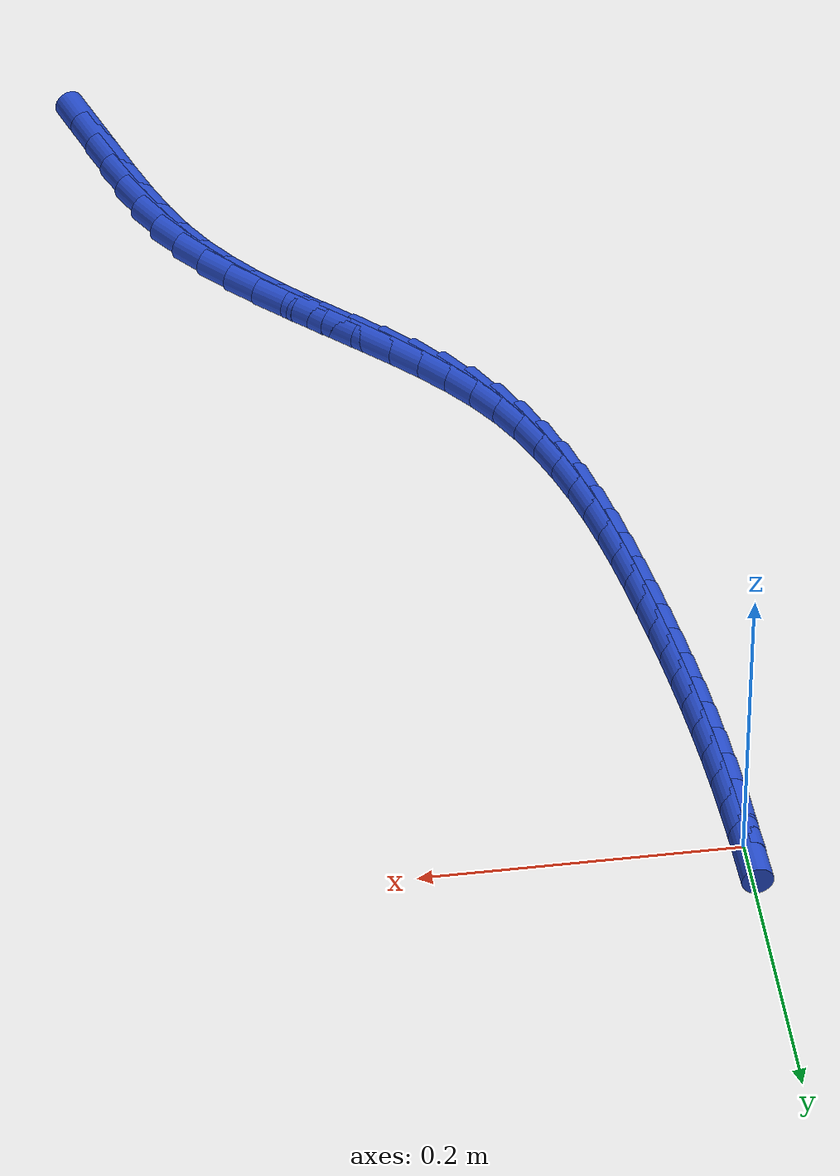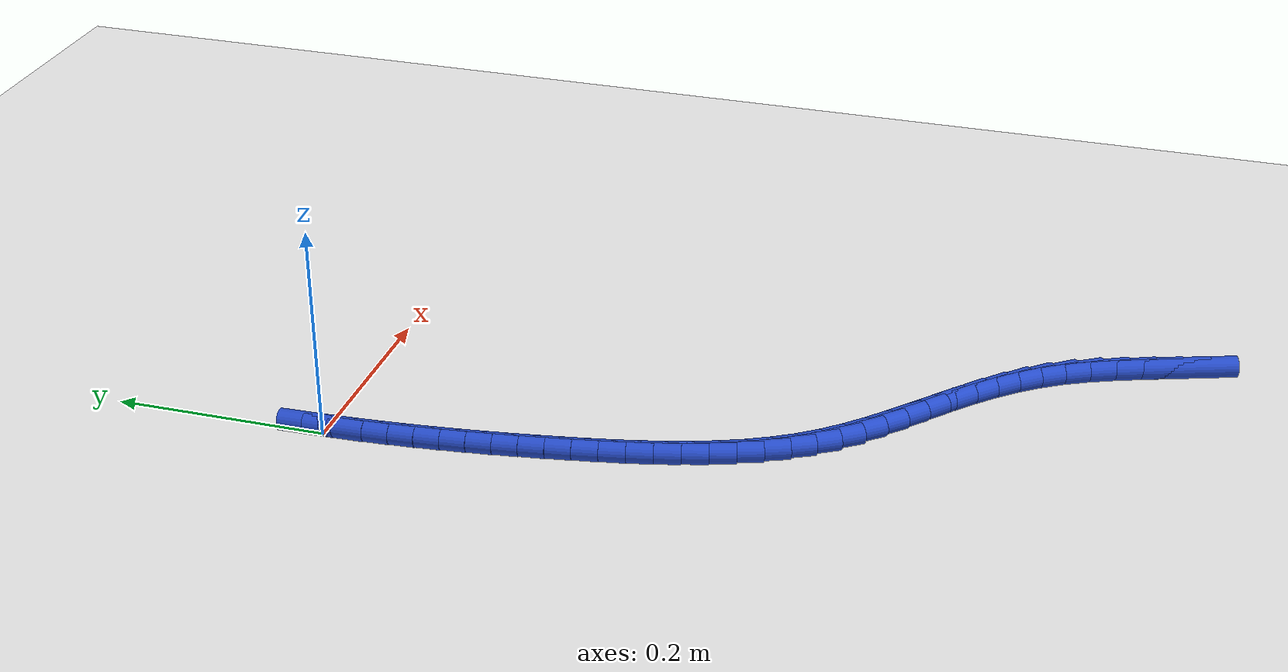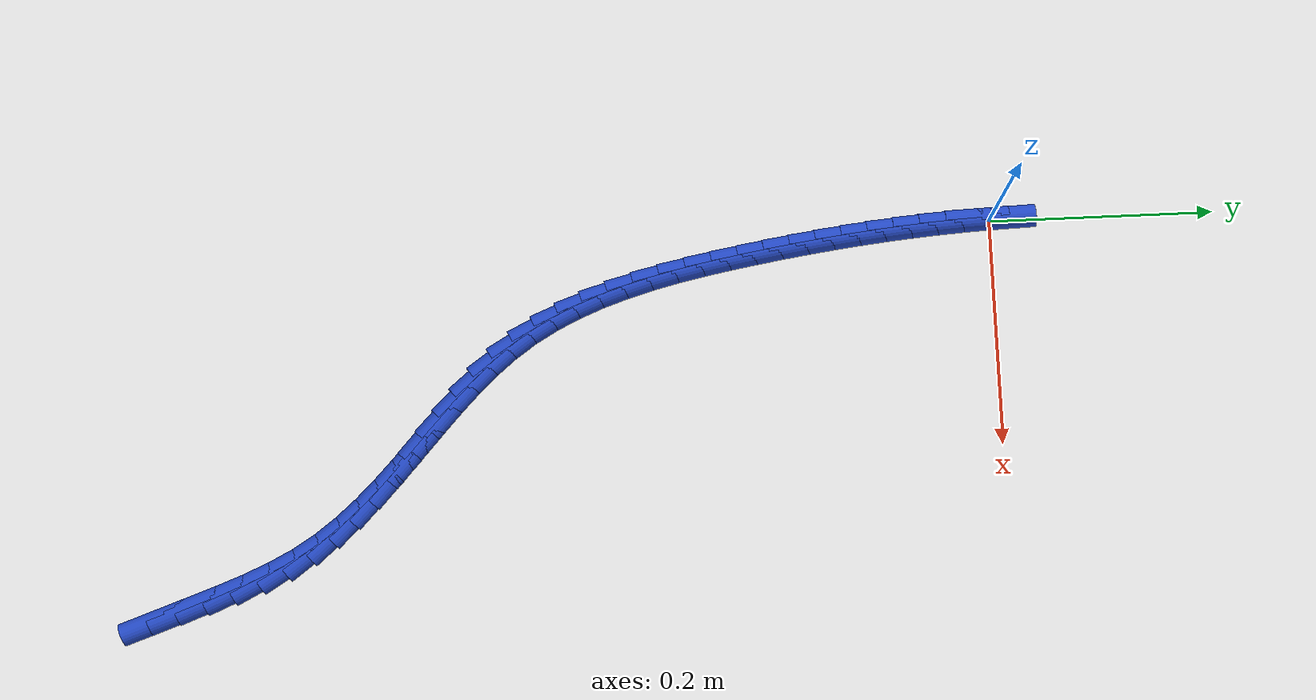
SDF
<sdf version="1.6">
 <world name="default">
  <model name="ground_plane">
   <static>1</static>
   <link name="link">
    <collision name="collision">
     <geometry><plane><normal>0 0 1</normal><size>100 100</size></plane></geometry>
     <surface><friction><ode><mu>100</mu><mu2>50</mu2></ode></friction></surface>
    </collision>
    <visual name="visual">
     <cast_shadows>0</cast_shadows>
     <geometry><plane><normal>0 0 1</normal><size>100 100</size></plane></geometry>
     <material>
      <script><uri>file://media/materials/scripts/gazebo.material</uri><name>Gazebo/WhiteGlow</name></script>
     </material>
    </visual>
   </link>
  </model>
  <model name="line">
   <link name="link_0">
    <pose>1.8214596497756474e-17 0.0 0.01 0 1.57 -1.538473802093192</pose>
    <collision name="collision">
     <geometry><cylinder><radius>0.01</radius><length>0.08</length></cylinder></geometry>
    </collision>
    <visual name="visual">
     <material>
      <script><name>Gazebo/Blue</name><uri>file://media/materials/scripts/gazebo.material</uri></script>
     </material>
     <geometry><cylinder><radius>0.01</radius><length>0.08</length></cylinder></geometry>
    </visual>
   </link>
   <link name="link_255">
    <pose>0.32106682018502103 -0.7330263671038842 0.01 0 1.57 -1.2356195115339834</pose>
    <collision name="collision">
     <geometry><cylinder><radius>0.01</radius><length>0.08</length></cylinder></geometry>
    </collision>
    <visual name="visual">
     <material>
      <script><name>Gazebo/Blue</name><uri>file://media/materials/scripts/gazebo.material</uri></script>
     </material>
     <geometry><cylinder><radius>0.01</radius><length>0.08</length></cylinder></geometry>
    </visual>
   </link>
   <link name="link_256">
    <pose>0.3128875784879244 -0.7095443491764931 0.01 0 1.57 -1.233583573580199</pose>
    <collision name="collision">
     <geometry><cylinder><radius>0.01</radius><length>0.08</length></cylinder></geometry>
    </collision>
    <visual name="visual">
     <material>
      <script><name>Gazebo/Blue</name><uri>file://media/materials/scripts/gazebo.material</uri></script>
     </material>
     <geometry><cylinder><radius>0.01</radius><length>0.08</length></cylinder></geometry>
    </visual>
   </link>
   <link name="link_257">
    <pose>0.30458377673203146 -0.6858600698453016 0.01 0 1.57 -1.2114731334229207</pose>
    <collision name="collision">
     <geometry><cylinder><radius>0.01</radius><length>0.08</length></cylinder></geometry>
    </collision>
    <visual name="visual">
     <material>
      <script><name>Gazebo/Blue</name><uri>file://media/materials/scripts/gazebo.material</uri></script>
     </material>
     <geometry><cylinder><radius>0.01</radius><length>0.08</length></cylinder></geometry>
    </visual>
   </link>
   <link name="link_258">
    <pose>0.2957657089542809 -0.6623846831440507 0.01 0 1.57 -1.1686099650813988</pose>
    <collision name="collision">
     <geometry><cylinder><radius>0.01</radius><length>0.08</length></cylinder></geometry>
    </collision>
    <visual name="visual">
     <material>
      <script><name>Gazebo/Blue</name><uri>file://media/materials/scripts/gazebo.material</uri></script>
     </material>
     <geometry><cylinder><radius>0.01</radius><length>0.08</length></cylinder></geometry>
    </visual>
   </link>
   <link name="link_259">
    <pose>0.2860436691916113 -0.6395293431064811 0.01 0 1.57 -1.1033565492524389</pose>
    <collision name="collision">
     <geometry><cylinder><radius>0.01</radius><length>0.08</length></cylinder></geometry>
    </collision>
    <visual name="visual">
     <material>
      <script><name>Gazebo/Blue</name><uri>file://media/materials/scripts/gazebo.material</uri></script>
     </material>
     <geometry><cylinder><radius>0.01</radius><length>0.08</length></cylinder></geometry>
    </visual>
   </link>
   <link name="link_260">
    <pose>0.27502795148096154 -0.617705203766334 0.01 0 1.57 -1.015612853715079</pose>
    <collision name="collision">
     <geometry><cylinder><radius>0.01</radius><length>0.08</length></cylinder></geometry>
    </collision>
    <visual name="visual">
     <material>
      <script><name>Gazebo/Blue</name><uri>file://media/materials/scripts/gazebo.material</uri></script>
     </material>
     <geometry><cylinder><radius>0.01</radius><length>0.08</length></cylinder></geometry>
    </visual>
   </link>
   <link name="link_261">
    <pose>0.2623648869923743 -0.597289465846833 0.01 0 1.57 -0.9273345155546358</pose>
    <collision name="collision">
     <geometry><cylinder><radius>0.01</radius><length>0.08</length></cylinder></geometry>
    </collision>
    <visual name="visual">
     <material>
      <script><name>Gazebo/Blue</name><uri>file://media/materials/scripts/gazebo.material</uri></script>
     </material>
     <geometry><cylinder><radius>0.01</radius><length>0.08</length></cylinder></geometry>
    </visual>
   </link>
   <link name="link_262">
    <pose>0.24810666225410855 -0.5782769430216367 0.01 0 1.57 -0.8544490313408714</pose>
    <collision name="collision">
     <geometry><cylinder><radius>0.01</radius><length>0.08</length></cylinder></geometry>
    </collision>
    <visual name="visual">
     <material>
      <script><name>Gazebo/Blue</name><uri>file://media/materials/scripts/gazebo.material</uri></script>
     </material>
     <geometry><cylinder><radius>0.01</radius><length>0.08</length></cylinder></geometry>
    </visual>
   </link>
   <link name="link_263">
    <pose>0.23256122765644002 -0.5604214744728715 0.01 0 1.57 -0.7981748123829998</pose>
    <collision name="collision">
     <geometry><cylinder><radius>0.01</radius><length>0.08</length></cylinder></geometry>
    </collision>
    <visual name="visual">
     <material>
      <script><name>Gazebo/Blue</name><uri>file://media/materials/scripts/gazebo.material</uri></script>
     </material>
     <geometry><cylinder><radius>0.01</radius><length>0.08</length></cylinder></geometry>
    </visual>
   </link>
   <link name="link_264">
    <pose>0.21604053137273274 -0.543473132768649 0.01 0 1.57 -0.7587319407372717</pose>
    <collision name="collision">
     <geometry><cylinder><radius>0.01</radius><length>0.08</length></cylinder></geometry>
    </collision>
    <visual name="visual">
     <material>
      <script><name>Gazebo/Blue</name><uri>file://media/materials/scripts/gazebo.material</uri></script>
     </material>
     <geometry><cylinder><radius>0.01</radius><length>0.08</length></cylinder></geometry>
    </visual>
   </link>
   <link name="link_265">
    <pose>0.19885652157635147 -0.5271819904770817 0.01 0 1.57 -0.7360205553714164</pose>
    <collision name="collision">
     <geometry><cylinder><radius>0.01</radius><length>0.08</length></cylinder></geometry>
    </collision>
    <visual name="visual">
     <material>
      <script><name>Gazebo/Blue</name><uri>file://media/materials/scripts/gazebo.material</uri></script>
     </material>
     <geometry><cylinder><radius>0.01</radius><length>0.08</length></cylinder></geometry>
    </visual>
   </link>
   <link name="link_266">
    <pose>0.1813211464406592 -0.5112981201662803 0.01 0 1.57 -0.729953744071418</pose>
    <collision name="collision">
     <geometry><cylinder><radius>0.01</radius><length>0.08</length></cylinder></geometry>
    </collision>
    <visual name="visual">
     <material>
      <script><name>Gazebo/Blue</name><uri>file://media/materials/scripts/gazebo.material</uri></script>
     </material>
     <geometry><cylinder><radius>0.01</radius><length>0.08</length></cylinder></geometry>
    </visual>
   </link>
   <link name="link_267">
    <pose>0.16374635413902056 -0.4955715944043571 0.01 0 1.57 -0.7406487309422715</pose>
    <collision name="collision">
     <geometry><cylinder><radius>0.01</radius><length>0.08</length></cylinder></geometry>
    </collision>
    <visual name="visual">
     <material>
      <script><name>Gazebo/Blue</name><uri>file://media/materials/scripts/gazebo.material</uri></script>
     </material>
     <geometry><cylinder><radius>0.01</radius><length>0.08</length></cylinder></geometry>
    </visual>
   </link>
   <link name="link_268">
    <pose>0.14644409284479973 -0.4797524857594239 0.01 0 1.57 -0.7684845305331675</pose>
    <collision name="collision">
     <geometry><cylinder><radius>0.01</radius><length>0.08</length></cylinder></geometry>
    </collision>
    <visual name="visual">
     <material>
      <script><name>Gazebo/Blue</name><uri>file://media/materials/scripts/gazebo.material</uri></script>
     </material>
     <geometry><cylinder><radius>0.01</radius><length>0.08</length></cylinder></geometry>
    </visual>
   </link>
   <link name="link_269">
    <pose>0.12972631073136082 -0.4635908667995927 0.01 0 1.57 -0.8140224280025766</pose>
    <collision name="collision">
     <geometry><cylinder><radius>0.01</radius><length>0.08</length></cylinder></geometry>
    </collision>
    <visual name="visual">
     <material>
      <script><name>Gazebo/Blue</name><uri>file://media/materials/scripts/gazebo.material</uri></script>
     </material>
     <geometry><cylinder><radius>0.01</radius><length>0.08</length></cylinder></geometry>
    </visual>
   </link>
   <link name="link_270">
    <pose>0.11390495597206801 -0.44683681009297516 0.01 0 1.57 -0.8777610729032944</pose>
    <collision name="collision">
     <geometry><cylinder><radius>0.01</radius><length>0.08</length></cylinder></geometry>
    </collision>
    <visual name="visual">
     <material>
      <script><name>Gazebo/Blue</name><uri>file://media/materials/scripts/gazebo.material</uri></script>
     </material>
     <geometry><cylinder><radius>0.01</radius><length>0.08</length></cylinder></geometry>
    </visual>
   </link>
   <link name="link_271">
    <pose>0.09929197674028538 -0.4292403882076832 0.01 0 1.57 -0.9591633932843074</pose>
    <collision name="collision">
     <geometry><cylinder><radius>0.01</radius><length>0.08</length></cylinder></geometry>
    </collision>
    <visual name="visual">
     <material>
      <script><name>Gazebo/Blue</name><uri>file://media/materials/scripts/gazebo.material</uri></script>
     </material>
     <geometry><cylinder><radius>0.01</radius><length>0.08</length></cylinder></geometry>
    </visual>
   </link>
   <link name="link_272">
    <pose>0.08619017938676432 -0.41055962189276995 0.01 0 1.57 -1.0447217202777226</pose>
    <collision name="collision">
     <geometry><cylinder><radius>0.01</radius><length>0.08</length></cylinder></geometry>
    </collision>
    <visual name="visual">
     <material>
      <script><name>Gazebo/Blue</name><uri>file://media/materials/scripts/gazebo.material</uri></script>
     </material>
     <geometry><cylinder><radius>0.01</radius><length>0.08</length></cylinder></geometry>
    </visual>
   </link>
   <link name="link_273">
    <pose>0.07468345671659121 -0.3907428620475484 0.01 0 1.57 -1.1208232927006163</pose>
    <collision name="collision">
     <geometry><cylinder><radius>0.01</radius><length>0.08</length></cylinder></geometry>
    </collision>
    <visual name="visual">
     <material>
      <script><name>Gazebo/Blue</name><uri>file://media/materials/scripts/gazebo.material</uri></script>
     </material>
     <geometry><cylinder><radius>0.01</radius><length>0.08</length></cylinder></geometry>
    </visual>
   </link>
   <link name="link_274">
    <pose>0.06463187084641364 -0.3699330648363163 0.01 0 1.57 -1.186867162996339</pose>
    <collision name="collision">
     <geometry><cylinder><radius>0.01</radius><length>0.08</length></cylinder></geometry>
    </collision>
    <visual name="visual">
     <material>
      <script><name>Gazebo/Blue</name><uri>file://media/materials/scripts/gazebo.material</uri></script>
     </material>
     <geometry><cylinder><radius>0.01</radius><length>0.08</length></cylinder></geometry>
    </visual>
   </link>
   <link name="link_275">
    <pose>0.055885358489594805 -0.34828198975951435 0.01 0 1.57 -1.2432303459414837</pose>
    <collision name="collision">
     <geometry><cylinder><radius>0.01</radius><length>0.08</length></cylinder></geometry>
    </collision>
    <visual name="visual">
     <material>
      <script><name>Gazebo/Blue</name><uri>file://media/materials/scripts/gazebo.material</uri></script>
     </material>
     <geometry><cylinder><radius>0.01</radius><length>0.08</length></cylinder></geometry>
    </visual>
   </link>
   <link name="link_276">
    <pose>0.048293856359497955 -0.32594139631758273 0.01 0 1.57 -1.2904820239617094</pose>
    <collision name="collision">
     <geometry><cylinder><radius>0.01</radius><length>0.08</length></cylinder></geometry>
    </collision>
    <visual name="visual">
     <material>
      <script><name>Gazebo/Blue</name><uri>file://media/materials/scripts/gazebo.material</uri></script>
     </material>
     <geometry><cylinder><radius>0.01</radius><length>0.08</length></cylinder></geometry>
    </visual>
   </link>
   <link name="link_277">
    <pose>0.04170730116948631 -0.30306304401096185 0.01 0 1.57 -1.329235695455802</pose>
    <collision name="collision">
     <geometry><cylinder><radius>0.01</radius><length>0.08</length></cylinder></geometry>
    </collision>
    <visual name="visual">
     <material>
      <script><name>Gazebo/Blue</name><uri>file://media/materials/scripts/gazebo.material</uri></script>
     </material>
     <geometry><cylinder><radius>0.01</radius><length>0.08</length></cylinder></geometry>
    </visual>
   </link>
   <link name="link_278">
    <pose>0.03597562963292311 -0.27979869234009197 0.01 0 1.57 -1.3600513570313828</pose>
    <collision name="collision">
     <geometry><cylinder><radius>0.01</radius><length>0.08</length></cylinder></geometry>
    </collision>
    <visual name="visual">
     <material>
      <script><name>Gazebo/Blue</name><uri>file://media/materials/scripts/gazebo.material</uri></script>
     </material>
     <geometry><cylinder><radius>0.01</radius><length>0.08</length></cylinder></geometry>
    </visual>
   </link>
   <link name="link_279">
    <pose>0.030948778463171567 -0.2563001008054135 0.01 0 1.57 -1.3833745075391957</pose>
    <collision name="collision">
     <geometry><cylinder><radius>0.01</radius><length>0.08</length></cylinder></geometry>
    </collision>
    <visual name="visual">
     <material>
      <script><name>Gazebo/Blue</name><uri>file://media/materials/scripts/gazebo.material</uri></script>
     </material>
     <geometry><cylinder><radius>0.01</radius><length>0.08</length></cylinder></geometry>
    </visual>
   </link>
   <link name="link_280">
    <pose>0.026476684373595055 -0.23271902890736748 0.01 0 1.57 -1.399517204229888</pose>
    <collision name="collision">
     <geometry><cylinder><radius>0.01</radius><length>0.08</length></cylinder></geometry>
    </collision>
    <visual name="visual">
     <material>
      <script><name>Gazebo/Blue</name><uri>file://media/materials/scripts/gazebo.material</uri></script>
     </material>
     <geometry><cylinder><radius>0.01</radius><length>0.08</length></cylinder></geometry>
    </visual>
   </link>
   <link name="link_281">
    <pose>0.02240967362610633 -0.20920675248149098 0.01 0 1.57 -1.4110603605928955</pose>
    <collision name="collision">
     <geometry><cylinder><radius>0.01</radius><length>0.08</length></cylinder></geometry>
    </collision>
    <visual name="visual">
     <material>
      <script><name>Gazebo/Blue</name><uri>file://media/materials/scripts/gazebo.material</uri></script>
     </material>
     <geometry><cylinder><radius>0.01</radius><length>0.08</length></cylinder></geometry>
    </visual>
   </link>
   <link name="link_282">
    <pose>0.01864726068704564 -0.18585347510908556 0.01 0 1.57 -1.422831565772881</pose>
    <collision name="collision">
     <geometry><cylinder><radius>0.01</radius><length>0.08</length></cylinder></geometry>
    </collision>
    <visual name="visual">
     <material>
      <script><name>Gazebo/Blue</name><uri>file://media/materials/scripts/gazebo.material</uri></script>
     </material>
     <geometry><cylinder><radius>0.01</radius><length>0.08</length></cylinder></geometry>
    </visual>
   </link>
   <link name="link_283">
    <pose>0.015185615351051276 -0.1626293927628811 0.01 0 1.57 -1.4353462477640488</pose>
    <collision name="collision">
     <geometry><cylinder><radius>0.01</radius><length>0.08</length></cylinder></geometry>
    </collision>
    <visual name="visual">
     <material>
      <script><name>Gazebo/Blue</name><uri>file://media/materials/scripts/gazebo.material</uri></script>
     </material>
     <geometry><cylinder><radius>0.01</radius><length>0.08</length></cylinder></geometry>
    </visual>
   </link>
   <link name="link_284">
    <pose>0.012032171059969088 -0.13949071643010286 0.01 0 1.57 -1.4485444786950752</pose>
    <collision name="collision">
     <geometry><cylinder><radius>0.01</radius><length>0.08</length></cylinder></geometry>
    </collision>
    <visual name="visual">
     <material>
      <script><name>Gazebo/Blue</name><uri>file://media/materials/scripts/gazebo.material</uri></script>
     </material>
     <geometry><cylinder><radius>0.01</radius><length>0.08</length></cylinder></geometry>
    </visual>
   </link>
   <link name="link_285">
    <pose>0.009194361255644943 -0.11639365709797611 0.01 0 1.57 -1.4623564837075635</pose>
    <collision name="collision">
     <geometry><cylinder><radius>0.01</radius><length>0.08</length></cylinder></geometry>
    </collision>
    <visual name="visual">
     <material>
      <script><name>Gazebo/Blue</name><uri>file://media/materials/scripts/gazebo.material</uri></script>
     </material>
     <geometry><cylinder><radius>0.01</radius><length>0.08</length></cylinder></geometry>
    </visual>
   </link>
   <link name="link_286">
    <pose>0.0066796193799247006 -0.09329442575372617 0.01 0 1.57 -1.4767037537541008</pose>
    <collision name="collision">
     <geometry><cylinder><radius>0.01</radius><length>0.08</length></cylinder></geometry>
    </collision>
    <visual name="visual">
     <material>
      <script><name>Gazebo/Blue</name><uri>file://media/materials/scripts/gazebo.material</uri></script>
     </material>
     <geometry><cylinder><radius>0.01</radius><length>0.08</length></cylinder></geometry>
    </visual>
   </link>
   <link name="link_287">
    <pose>0.004495378874654224 -0.07014923338457829 0.01 0 1.57 -1.4915004849910267</pose>
    <collision name="collision">
     <geometry><cylinder><radius>0.01</radius><length>0.08</length></cylinder></geometry>
    </collision>
    <visual name="visual">
     <material>
      <script><name>Gazebo/Blue</name><uri>file://media/materials/scripts/gazebo.material</uri></script>
     </material>
     <geometry><cylinder><radius>0.01</radius><length>0.08</length></cylinder></geometry>
    </visual>
   </link>
   <link name="link_288">
    <pose>0.0026490731816793765 -0.046914290977757775 0.01 0 1.57 -1.506655293276738</pose>
    <collision name="collision">
     <geometry><cylinder><radius>0.01</radius><length>0.08</length></cylinder></geometry>
    </collision>
    <visual name="visual">
     <material>
      <script><name>Gazebo/Blue</name><uri>file://media/materials/scripts/gazebo.material</uri></script>
     </material>
     <geometry><cylinder><radius>0.01</radius><length>0.08</length></cylinder></geometry>
    </visual>
   </link>
   <link name="link_289">
    <pose>0.0011481357428460193 -0.023545809520489906 0.01 0 1.57 -1.5220731321561949</pose>
    <collision name="collision">
     <geometry><cylinder><radius>0.01</radius><length>0.08</length></cylinder></geometry>
    </collision>
    <visual name="visual">
     <material>
      <script><name>Gazebo/Blue</name><uri>file://media/materials/scripts/gazebo.material</uri></script>
     </material>
     <geometry><cylinder><radius>0.01</radius><length>0.08</length></cylinder></geometry>
    </visual>
   </link>
  </model>
 </world>
</sdf>
